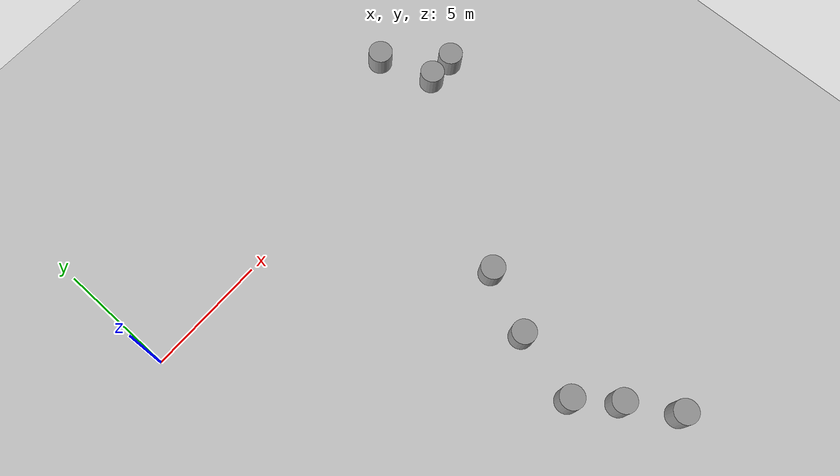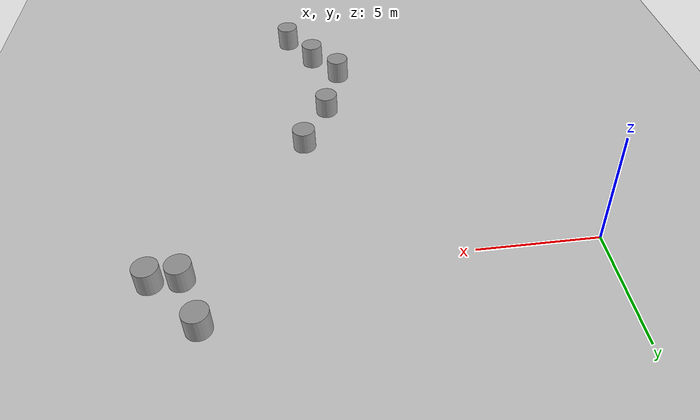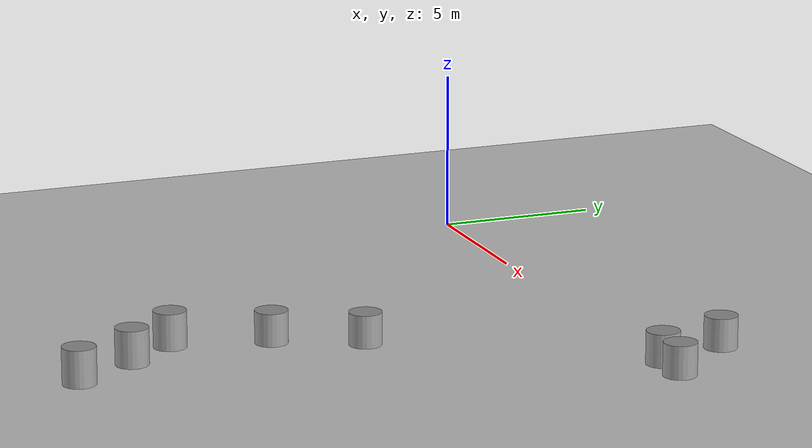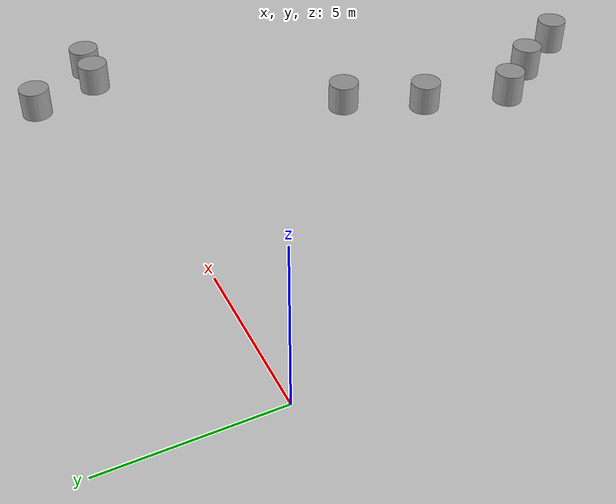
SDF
<sdf version="1.6">
 <world name="default">
  <model name="ground_plane">
   <static>1</static>
   <link name="link">
    <collision name="collision">
     <geometry><plane><normal>0 0 1</normal><size>100 100</size></plane></geometry>
     <surface><friction><ode><mu>100</mu><mu2>50</mu2></ode></friction></surface>
    </collision>
    <visual name="visual">
     <cast_shadows>0</cast_shadows>
     <geometry><plane><normal>0 0 1</normal><size>100 100</size></plane></geometry>
     <material>
      <script><uri>file://media/materials/scripts/gazebo.material</uri><name>Gazebo/Grey</name></script>
     </material>
    </visual>
   </link>
  </model>
  <model name="unit_cylinder_5">
   <pose>10.0678 -9.68402 0.499992 -3e-06 3e-06 0</pose>
   <link name="link">
    <inertial>
     <mass>1</mass>
     <inertia><ixx>0.145833</ixx><ixy>0</ixy><ixz>0</ixz><iyy>0.145833</iyy><iyz>0</iyz><izz>0.125</izz></inertia>
    </inertial>
    <collision name="collision">
     <geometry><cylinder><radius>0.5</radius><length>1</length></cylinder></geometry>
    </collision>
    <visual name="visual">
     <geometry><cylinder><radius>0.5</radius><length>1</length></cylinder></geometry>
     <material>
      <script><name>Gazebo/Grey</name><uri>file://media/materials/scripts/gazebo.material</uri></script>
     </material>
    </visual>
   </link>
  </model>
  <model name="unit_cylinder_7">
   <pose>16.1071 0.121156 0.499992 -3e-06 3e-06 0</pose>
   <link name="link">
    <inertial>
     <mass>1</mass>
     <inertia><ixx>0.145833</ixx><ixy>0</ixy><ixz>0</ixz><iyy>0.145833</iyy><iyz>0</iyz><izz>0.125</izz></inertia>
    </inertial>
    <collision name="collision">
     <geometry><cylinder><radius>0.5</radius><length>1</length></cylinder></geometry>
    </collision>
    <visual name="visual">
     <geometry><cylinder><radius>0.5</radius><length>1</length></cylinder></geometry>
     <material>
      <script><name>Gazebo/Grey</name><uri>file://media/materials/scripts/gazebo.material</uri></script>
     </material>
    </visual>
   </link>
  </model>
  <model name="unit_cylinder_8">
   <pose>17.2665 0.107559 0.499998 3e-06 -3e-06 0</pose>
   <link name="link">
    <inertial>
     <mass>1</mass>
     <inertia><ixx>0.145833</ixx><ixy>0</ixy><ixz>0</ixz><iyy>0.145833</iyy><iyz>0</iyz><izz>0.125</izz></inertia>
    </inertial>
    <collision name="collision">
     <geometry><cylinder><radius>0.5</radius><length>1</length></cylinder></geometry>
    </collision>
    <visual name="visual">
     <geometry><cylinder><radius>0.5</radius><length>1</length></cylinder></geometry>
     <material>
      <script><name>Gazebo/Grey</name><uri>file://media/materials/scripts/gazebo.material</uri></script>
     </material>
    </visual>
   </link>
  </model>
  <model name="unit_cylinder_9">
   <pose>15.3446 2.35325 0.499998 3e-06 -3e-06 0</pose>
   <link name="link">
    <inertial>
     <mass>1</mass>
     <inertia><ixx>0.145833</ixx><ixy>0</ixy><ixz>0</ixz><iyy>0.145833</iyy><iyz>0</iyz><izz>0.125</izz></inertia>
    </inertial>
    <collision name="collision">
     <geometry><cylinder><radius>0.5</radius><length>1</length></cylinder></geometry>
    </collision>
    <visual name="visual">
     <geometry><cylinder><radius>0.5</radius><length>1</length></cylinder></geometry>
     <material>
      <script><name>Gazebo/Grey</name><uri>file://media/materials/scripts/gazebo.material</uri></script>
     </material>
    </visual>
   </link>
  </model>
  <model name="unit_cylinder_11">
   <pose>11.2425 -7.17957 0.499992 -3e-06 3e-06 0</pose>
   <link name="link">
    <inertial>
     <mass>1</mass>
     <inertia><ixx>0.145833</ixx><ixy>0</ixy><ixz>0</ixz><iyy>0.145833</iyy><iyz>0</iyz><izz>0.125</izz></inertia>
    </inertial>
    <collision name="collision">
     <geometry><cylinder><radius>0.5</radius><length>1</length></cylinder></geometry>
    </collision>
    <visual name="visual">
     <geometry><cylinder><radius>0.5</radius><length>1</length></cylinder></geometry>
     <material>
      <script><name>Gazebo/Grey</name><uri>file://media/materials/scripts/gazebo.material</uri></script>
     </material>
    </visual>
   </link>
  </model>
  <model name="unit_cylinder_12">
   <link name="link">
    <inertial>
     <mass>1</mass>
     <inertia><ixx>0.145833</ixx><ixy>0</ixy><ixz>0</ixz><iyy>0.145833</iyy><iyz>0</iyz><izz>0.125</izz></inertia>
    </inertial>
    <visual name="visual">
     <geometry><cylinder><radius>0.5</radius><length>1.2</length></cylinder></geometry>
     <material>
      <script><name>Gazebo/Grey</name><uri>file://media/materials/scripts/gazebo.material</uri></script>
      <shader type="pixel"><normal_map>__default__</normal_map></shader>
      <ambient>0.3 0.3 0.3 1</ambient>
      <diffuse>0.7 0.7 0.7 1</diffuse>
      <specular>0.01 0.01 0.01 1</specular>
      <emissive>0 0 0 1</emissive>
     </material>
    </visual>
    <collision name="collision">
     <geometry><cylinder><radius>0.5</radius><length>1</length></cylinder></geometry>
     <surface>
      <friction>
       <ode><mu>1</mu><mu2>1</mu2><fdir1>0 0 0</fdir1><slip1>0</slip1><slip2>0</slip2></ode>
       <torsional>
        <coefficient>1</coefficient>
        <patch_radius>0</patch_radius>
        <surface_radius>0</surface_radius>
        <use_patch_radius>1</use_patch_radius>
        <ode><slip>0</slip></ode>
       </torsional>
      </friction>
      <bounce><restitution_coefficient>0</restitution_coefficient><threshold>1e+06</threshold></bounce>
      <contact>
       <collide_without_contact>0</collide_without_contact>
       <collide_without_contact_bitmask>1</collide_without_contact_bitmask>
       <collide_bitmask>1</collide_bitmask>
       <ode>
        <soft_cfm>0</soft_cfm>
        <soft_erp>0.2</soft_erp>
        <kp>1e+13</kp>
        <kd>1</kd>
        <max_vel>0.01</max_vel>
        <min_depth>0</min_depth>
       </ode>
       <bullet>
        <split_impulse>1</split_impulse>
        <split_impulse_penetration_threshold>-0.01</split_impulse_penetration_threshold>
        <soft_cfm>0</soft_cfm>
        <soft_erp>0.2</soft_erp>
        <kp>1e+13</kp>
        <kd>1</kd>
       </bullet>
      </contact>
     </surface>
    </collision>
   </link>
   <static>0</static>
   <pose>11.7015 -16.0106 0.499997 3e-06 4e-06 -0</pose>
  </model>
  <model name="unit_cylinder_3">
   <link name="link">
    <inertial>
     <mass>1</mass>
     <inertia><ixx>0.145833</ixx><ixy>0</ixy><ixz>0</ixz><iyy>0.145833</iyy><iyz>0</iyz><izz>0.125</izz></inertia>
    </inertial>
    <visual name="visual">
     <geometry><cylinder><radius>0.5</radius><length>1.2</length></cylinder></geometry>
     <material>
      <script><name>Gazebo/Grey</name><uri>file://media/materials/scripts/gazebo.material</uri></script>
      <shader type="pixel"><normal_map>__default__</normal_map></shader>
      <ambient>0.3 0.3 0.3 1</ambient>
      <diffuse>0.7 0.7 0.7 1</diffuse>
      <specular>0.01 0.01 0.01 1</specular>
      <emissive>0 0 0 1</emissive>
     </material>
    </visual>
    <collision name="collision">
     <geometry><cylinder><radius>0.5</radius><length>1</length></cylinder></geometry>
     <surface>
      <friction>
       <ode><mu>1</mu><mu2>1</mu2><fdir1>0 0 0</fdir1><slip1>0</slip1><slip2>0</slip2></ode>
       <torsional>
        <coefficient>1</coefficient>
        <patch_radius>0</patch_radius>
        <surface_radius>0</surface_radius>
        <use_patch_radius>1</use_patch_radius>
        <ode><slip>0</slip></ode>
       </torsional>
      </friction>
      <bounce><restitution_coefficient>0</restitution_coefficient><threshold>1e+06</threshold></bounce>
      <contact>
       <collide_without_contact>0</collide_without_contact>
       <collide_without_contact_bitmask>1</collide_without_contact_bitmask>
       <collide_bitmask>1</collide_bitmask>
       <ode>
        <soft_cfm>0</soft_cfm>
        <soft_erp>0.2</soft_erp>
        <kp>1e+13</kp>
        <kd>1</kd>
        <max_vel>0.01</max_vel>
        <min_depth>0</min_depth>
       </ode>
       <bullet>
        <split_impulse>1</split_impulse>
        <split_impulse_penetration_threshold>-0.01</split_impulse_penetration_threshold>
        <soft_cfm>0</soft_cfm>
        <soft_erp>0.2</soft_erp>
        <kp>1e+13</kp>
        <kd>1</kd>
       </bullet>
      </contact>
     </surface>
    </collision>
   </link>
   <static>0</static>
   <pose>10.5049 -14.0842 0.499993 -3e-06 -4e-06 -0</pose>
  </model>
  <model name="unit_cylinder_2">
   <link name="link">
    <inertial>
     <mass>1</mass>
     <inertia><ixx>0.145833</ixx><ixy>0</ixy><ixz>0</ixz><iyy>0.145833</iyy><iyz>0</iyz><izz>0.125</izz></inertia>
    </inertial>
    <visual name="visual">
     <geometry><cylinder><radius>0.5</radius><length>1.2</length></cylinder></geometry>
     <material>
      <script><name>Gazebo/Grey</name><uri>file://media/materials/scripts/gazebo.material</uri></script>
      <shader type="pixel"><normal_map>__default__</normal_map></shader>
      <ambient>0.3 0.3 0.3 1</ambient>
      <diffuse>0.7 0.7 0.7 1</diffuse>
      <specular>0.01 0.01 0.01 1</specular>
      <emissive>0 0 0 1</emissive>
     </material>
    </visual>
    <collision name="collision">
     <geometry><cylinder><radius>0.5</radius><length>1</length></cylinder></geometry>
     <surface>
      <friction>
       <ode><mu>1</mu><mu2>1</mu2><fdir1>0 0 0</fdir1><slip1>0</slip1><slip2>0</slip2></ode>
       <torsional>
        <coefficient>1</coefficient>
        <patch_radius>0</patch_radius>
        <surface_radius>0</surface_radius>
        <use_patch_radius>1</use_patch_radius>
        <ode><slip>0</slip></ode>
       </torsional>
      </friction>
      <bounce><restitution_coefficient>0</restitution_coefficient><threshold>1e+06</threshold></bounce>
      <contact>
       <collide_without_contact>0</collide_without_contact>
       <collide_without_contact_bitmask>1</collide_without_contact_bitmask>
       <collide_bitmask>1</collide_bitmask>
       <ode>
        <soft_cfm>0</soft_cfm>
        <soft_erp>0.2</soft_erp>
        <kp>1e+13</kp>
        <kd>1</kd>
        <max_vel>0.01</max_vel>
        <min_depth>0</min_depth>
       </ode>
       <bullet>
        <split_impulse>1</split_impulse>
        <split_impulse_penetration_threshold>-0.01</split_impulse_penetration_threshold>
        <soft_cfm>0</soft_cfm>
        <soft_erp>0.2</soft_erp>
        <kp>1e+13</kp>
        <kd>1</kd>
       </bullet>
      </contact>
     </surface>
    </collision>
   </link>
   <static>0</static>
   <pose>9.3075 -12.5586 0.499998 3e-06 -4e-06 0</pose>
  </model>
 </world>
</sdf>
